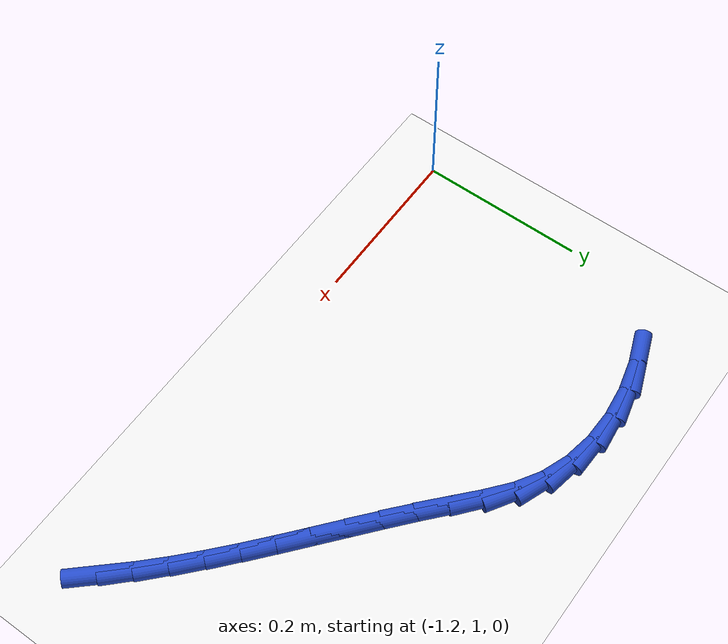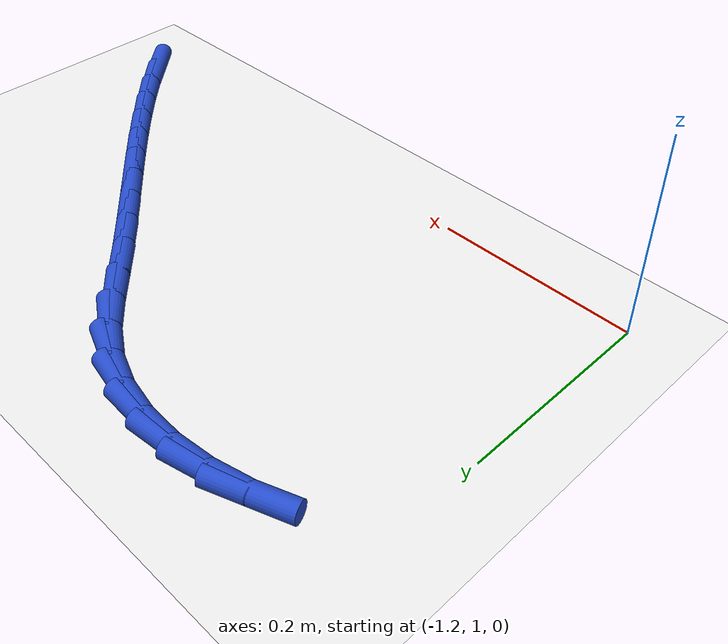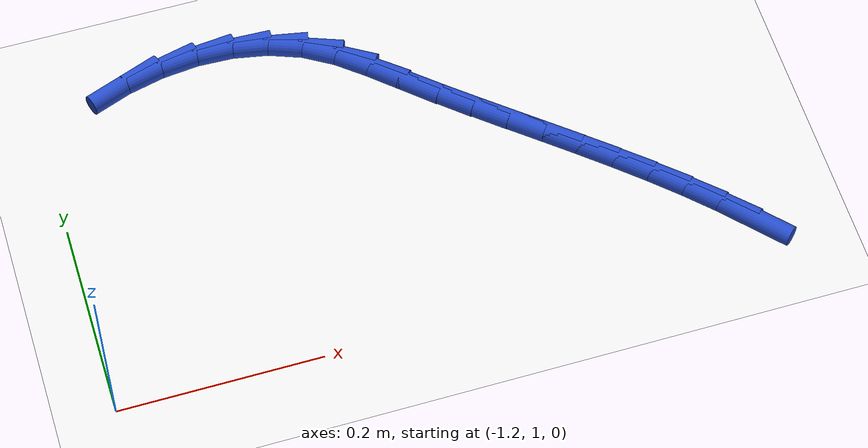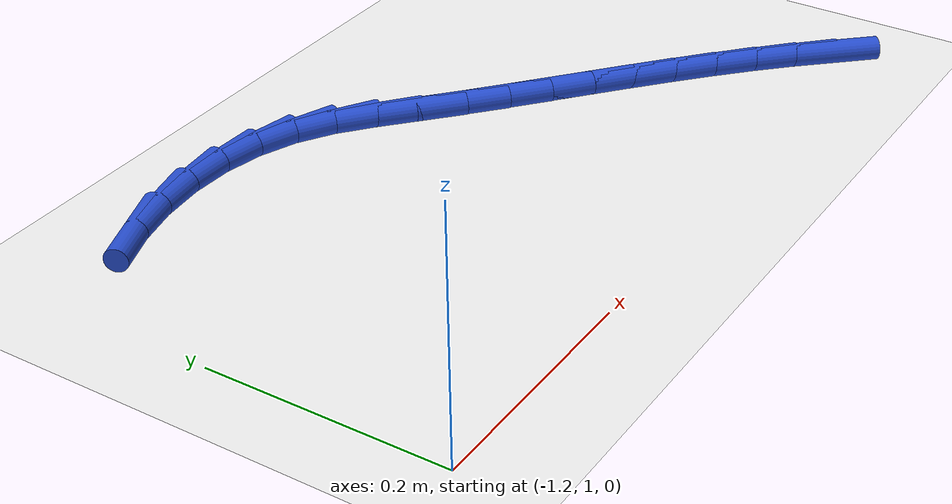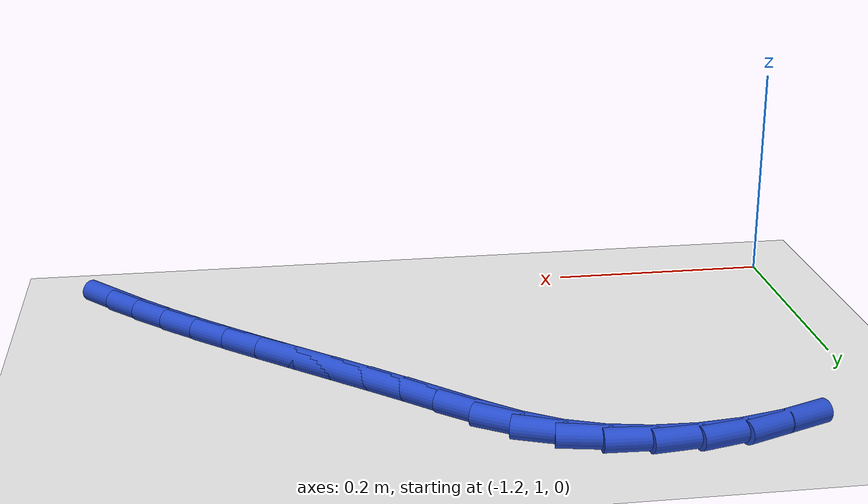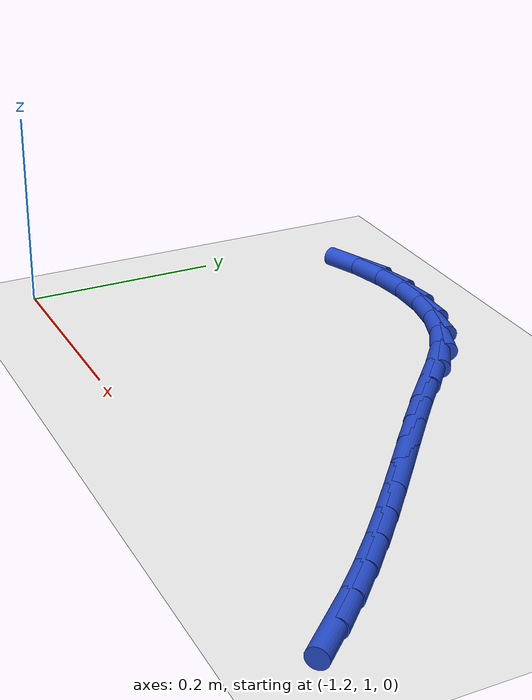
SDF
<sdf version="1.6">
 <world name="default">
  <model name="ground_plane">
   <static>1</static>
   <link name="link">
    <collision name="collision">
     <geometry><plane><normal>0 0 1</normal><size>100 100</size></plane></geometry>
     <surface><friction><ode><mu>100</mu><mu2>50</mu2></ode></friction></surface>
    </collision>
    <visual name="visual">
     <cast_shadows>0</cast_shadows>
     <geometry><plane><normal>0 0 1</normal><size>100 100</size></plane></geometry>
     <material>
      <script><uri>file://media/materials/scripts/gazebo.material</uri><name>Gazebo/WhiteGlow</name></script>
     </material>
    </visual>
   </link>
  </model>
  <model name="line">
   <link name="link_34">
    <pose>-0.5682118230620903 1.02102965222856 0.01 0 1.57 -0.8291987761525833</pose>
    <collision name="collision">
     <geometry><cylinder><radius>0.01</radius><length>0.08</length></cylinder></geometry>
    </collision>
    <visual name="visual">
     <material>
      <script><name>Gazebo/Blue</name><uri>file://media/materials/scripts/gazebo.material</uri></script>
     </material>
     <geometry><cylinder><radius>0.01</radius><length>0.08</length></cylinder></geometry>
    </visual>
   </link>
   <link name="link_35">
    <pose>-0.5926234962068395 1.0476792726659319 0.01 0 1.57 -0.7883597086406142</pose>
    <collision name="collision">
     <geometry><cylinder><radius>0.01</radius><length>0.08</length></cylinder></geometry>
    </collision>
    <visual name="visual">
     <material>
      <script><name>Gazebo/Blue</name><uri>file://media/materials/scripts/gazebo.material</uri></script>
     </material>
     <geometry><cylinder><radius>0.01</radius><length>0.08</length></cylinder></geometry>
    </visual>
   </link>
   <link name="link_36">
    <pose>-0.6184291671625328 1.0736382474100583 0.01 0 1.57 -0.7555291905596424</pose>
    <collision name="collision">
     <geometry><cylinder><radius>0.01</radius><length>0.08</length></cylinder></geometry>
    </collision>
    <visual name="visual">
     <material>
      <script><name>Gazebo/Blue</name><uri>file://media/materials/scripts/gazebo.material</uri></script>
     </material>
     <geometry><cylinder><radius>0.01</radius><length>0.08</length></cylinder></geometry>
    </visual>
   </link>
   <link name="link_37">
    <pose>-0.6453711412595232 1.0990169905166594 0.01 0 1.57 -0.7302354427312308</pose>
    <collision name="collision">
     <geometry><cylinder><radius>0.01</radius><length>0.08</length></cylinder></geometry>
    </collision>
    <visual name="visual">
     <material>
      <script><name>Gazebo/Blue</name><uri>file://media/materials/scripts/gazebo.material</uri></script>
     </material>
     <geometry><cylinder><radius>0.01</radius><length>0.08</length></cylinder></geometry>
    </visual>
   </link>
   <link name="link_38">
    <pose>-0.6731917238281643 1.1239259160414536 0.01 0 1.57 -0.7120838756087301</pose>
    <collision name="collision">
     <geometry><cylinder><radius>0.01</radius><length>0.08</length></cylinder></geometry>
    </collision>
    <visual name="visual">
     <material>
      <script><name>Gazebo/Blue</name><uri>file://media/materials/scripts/gazebo.material</uri></script>
     </material>
     <geometry><cylinder><radius>0.01</radius><length>0.08</length></cylinder></geometry>
    </visual>
   </link>
   <link name="link_39">
    <pose>-0.7016332201988096 1.1484754380401612 0.01 0 1.57 -0.7007845174598353</pose>
    <collision name="collision">
     <geometry><cylinder><radius>0.01</radius><length>0.08</length></cylinder></geometry>
    </collision>
    <visual name="visual">
     <material>
      <script><name>Gazebo/Blue</name><uri>file://media/materials/scripts/gazebo.material</uri></script>
     </material>
     <geometry><cylinder><radius>0.01</radius><length>0.08</length></cylinder></geometry>
    </visual>
   </link>
   <link name="link_40">
    <pose>-0.7304379357018123 1.1727759705685012 0.01 0 1.57 -0.6961673746985062</pose>
    <collision name="collision">
     <geometry><cylinder><radius>0.01</radius><length>0.08</length></cylinder></geometry>
    </collision>
    <visual name="visual">
     <material>
      <script><name>Gazebo/Blue</name><uri>file://media/materials/scripts/gazebo.material</uri></script>
     </material>
     <geometry><cylinder><radius>0.01</radius><length>0.08</length></cylinder></geometry>
    </visual>
   </link>
   <link name="link_41">
    <pose>-0.759348175667526 1.1969379276821934 0.01 0 1.57 -0.6981910785221916</pose>
    <collision name="collision">
     <geometry><cylinder><radius>0.01</radius><length>0.08</length></cylinder></geometry>
    </collision>
    <visual name="visual">
     <material>
      <script><name>Gazebo/Blue</name><uri>file://media/materials/scripts/gazebo.material</uri></script>
     </material>
     <geometry><cylinder><radius>0.01</radius><length>0.08</length></cylinder></geometry>
    </visual>
   </link>
   <link name="link_42">
    <pose>-0.7881062454263043 1.2210717234369575 0.01 0 1.57 -0.7069479684033514</pose>
    <collision name="collision">
     <geometry><cylinder><radius>0.01</radius><length>0.08</length></cylinder></geometry>
    </collision>
    <visual name="visual">
     <material>
      <script><name>Gazebo/Blue</name><uri>file://media/materials/scripts/gazebo.material</uri></script>
     </material>
     <geometry><cylinder><radius>0.01</radius><length>0.08</length></cylinder></geometry>
    </visual>
   </link>
   <link name="link_43">
    <pose>-0.8164544503085005 1.2452877718885127 0.01 0 1.57 -0.7226667909168422</pose>
    <collision name="collision">
     <geometry><cylinder><radius>0.01</radius><length>0.08</length></cylinder></geometry>
    </collision>
    <visual name="visual">
     <material>
      <script><name>Gazebo/Blue</name><uri>file://media/materials/scripts/gazebo.material</uri></script>
     </material>
     <geometry><cylinder><radius>0.01</radius><length>0.08</length></cylinder></geometry>
    </visual>
   </link>
   <link name="link_44">
    <pose>-0.844135095644468 1.2696964870925784 0.01 0 1.57 -0.737305310171386</pose>
    <collision name="collision">
     <geometry><cylinder><radius>0.01</radius><length>0.08</length></cylinder></geometry>
    </collision>
    <visual name="visual">
     <material>
      <script><name>Gazebo/Blue</name><uri>file://media/materials/scripts/gazebo.material</uri></script>
     </material>
     <geometry><cylinder><radius>0.01</radius><length>0.08</length></cylinder></geometry>
    </visual>
   </link>
   <link name="link_45">
    <pose>-0.8710774708853611 1.2941644829262386 0.01 0 1.57 -0.6911209274750407</pose>
    <collision name="collision">
     <geometry><cylinder><radius>0.01</radius><length>0.08</length></cylinder></geometry>
    </collision>
    <visual name="visual">
     <material>
      <script><name>Gazebo/Blue</name><uri>file://media/materials/scripts/gazebo.material</uri></script>
     </material>
     <geometry><cylinder><radius>0.01</radius><length>0.08</length></cylinder></geometry>
    </visual>
   </link>
   <link name="link_46">
    <pose>-0.8985133816809016 1.3168600810237472 0.01 0 1.57 -0.554242211140613</pose>
    <collision name="collision">
     <geometry><cylinder><radius>0.01</radius><length>0.08</length></cylinder></geometry>
    </collision>
    <visual name="visual">
     <material>
      <script><name>Gazebo/Blue</name><uri>file://media/materials/scripts/gazebo.material</uri></script>
     </material>
     <geometry><cylinder><radius>0.01</radius><length>0.08</length></cylinder></geometry>
    </visual>
   </link>
   <link name="link_47">
    <pose>-0.9282148182977124 1.3352440026054444 0.01 0 1.57 -0.36505649039442806</pose>
    <collision name="collision">
     <geometry><cylinder><radius>0.01</radius><length>0.08</length></cylinder></geometry>
    </collision>
    <visual name="visual">
     <material>
      <script><name>Gazebo/Blue</name><uri>file://media/materials/scripts/gazebo.material</uri></script>
     </material>
     <geometry><cylinder><radius>0.01</radius><length>0.08</length></cylinder></geometry>
    </visual>
   </link>
   <link name="link_48">
    <pose>-0.9610147359703501 1.3477796981426244 0.01 0 1.57 -0.19018767333489905</pose>
    <collision name="collision">
     <geometry><cylinder><radius>0.01</radius><length>0.08</length></cylinder></geometry>
    </collision>
    <visual name="visual">
     <material>
      <script><name>Gazebo/Blue</name><uri>file://media/materials/scripts/gazebo.material</uri></script>
     </material>
     <geometry><cylinder><radius>0.01</radius><length>0.08</length></cylinder></geometry>
    </visual>
   </link>
   <link name="link_49">
    <pose>-0.9962229987667067 1.354557797820425 0.01 0 1.57 -0.0342229439930538</pose>
    <collision name="collision">
     <geometry><cylinder><radius>0.01</radius><length>0.08</length></cylinder></geometry>
    </collision>
    <visual name="visual">
     <material>
      <script><name>Gazebo/Blue</name><uri>file://media/materials/scripts/gazebo.material</uri></script>
     </material>
     <geometry><cylinder><radius>0.01</radius><length>0.08</length></cylinder></geometry>
    </visual>
   </link>
   <link name="link_50">
    <pose>-1.0330106212900723 1.3558172703062894 0.01 0 1.57 0.10668978763686991</pose>
    <collision name="collision">
     <geometry><cylinder><radius>0.01</radius><length>0.08</length></cylinder></geometry>
    </collision>
    <visual name="visual">
     <material>
      <script><name>Gazebo/Blue</name><uri>file://media/materials/scripts/gazebo.material</uri></script>
     </material>
     <geometry><cylinder><radius>0.01</radius><length>0.08</length></cylinder></geometry>
    </visual>
   </link>
   <link name="link_51">
    <pose>-1.0705486181437374 1.3517970842676603 0.01 0 1.57 0.23732686594858204</pose>
    <collision name="collision">
     <geometry><cylinder><radius>0.01</radius><length>0.08</length></cylinder></geometry>
    </collision>
    <visual name="visual">
     <material>
      <script><name>Gazebo/Blue</name><uri>file://media/materials/scripts/gazebo.material</uri></script>
     </material>
     <geometry><cylinder><radius>0.01</radius><length>0.08</length></cylinder></geometry>
    </visual>
   </link>
   <link name="link_52">
    <pose>-1.1080080039309923 1.3427362083719816 0.01 0 1.57 0.3624993980727459</pose>
    <collision name="collision">
     <geometry><cylinder><radius>0.01</radius><length>0.08</length></cylinder></geometry>
    </collision>
    <visual name="visual">
     <material>
      <script><name>Gazebo/Blue</name><uri>file://media/materials/scripts/gazebo.material</uri></script>
     </material>
     <geometry><cylinder><radius>0.01</radius><length>0.08</length></cylinder></geometry>
    </visual>
   </link>
  </model>
 </world>
</sdf>
